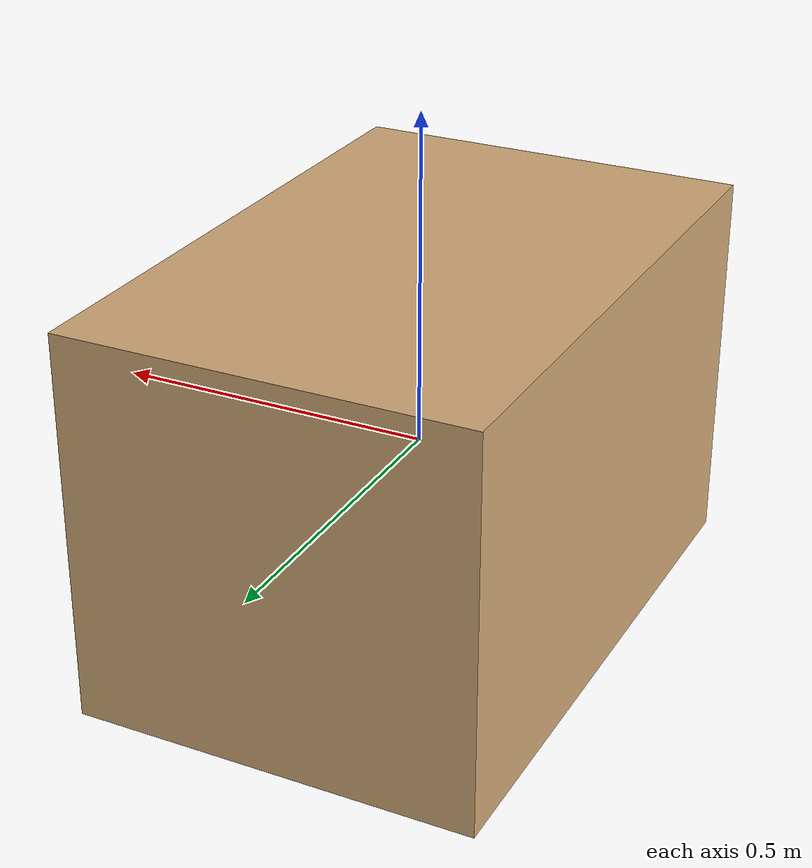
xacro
<?xml version="1.0" encoding="UTF-8"?>
<robot xmlns:xacro="http://ros.org/wiki/xacro" name="table">

  <xacro:arg name="name" default="table"/>

  <link name="$(arg name)_link">
    <inertial>
      <origin xyz="0 0 0" rpy="0 0 0"/>
      <mass value="200"/>
      <inertia ixx="0.1"  ixy="0"  ixz="0" iyy="0.1" iyz="0" izz="0.1" />
    </inertial>
    <visual>
      <origin xyz="0 0 0" rpy="0 0 0" />
      <geometry>
	<box size="0.61 0.9125 0.59"/>
      </geometry>
      <material name="table_color">
	<color rgba="${210/255} ${170/255} ${120/255} 1.0"/>
      </material>
    </visual>
    <collision>
      <origin xyz="0 0 0" rpy="0 0 0" />
      <geometry>
	<box size="0.61 0.9125 0.59"/>
      </geometry>
    </collision>
  </link>

  <gazebo reference="$(arg name)_link">
    <material>Gazebo/WoodPallet</material>
  </gazebo>

</robot>
